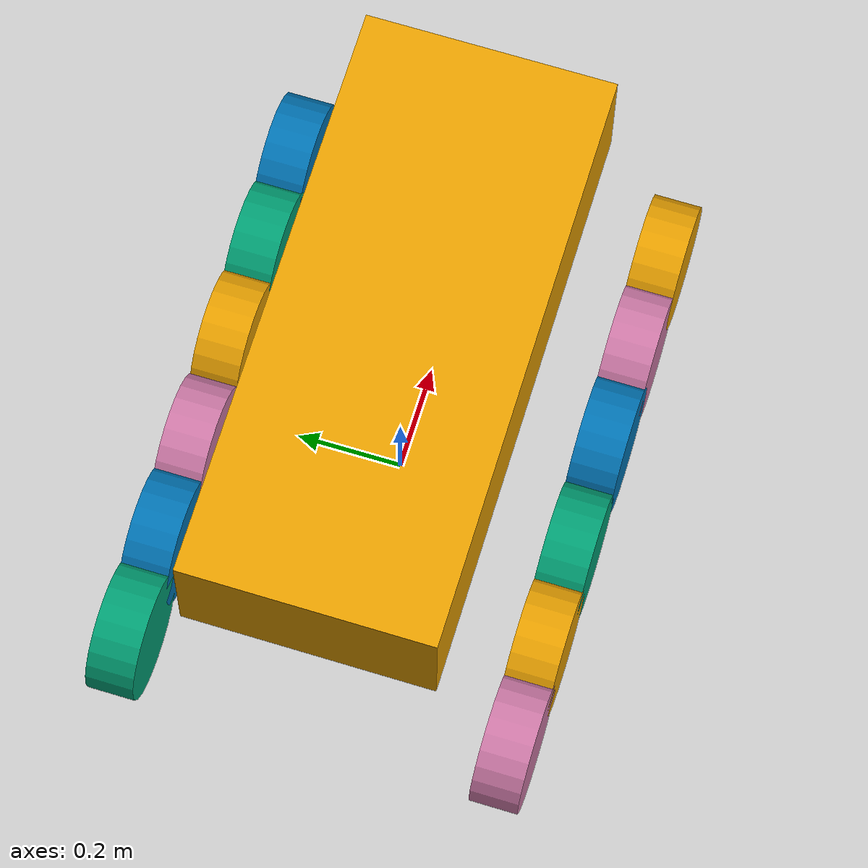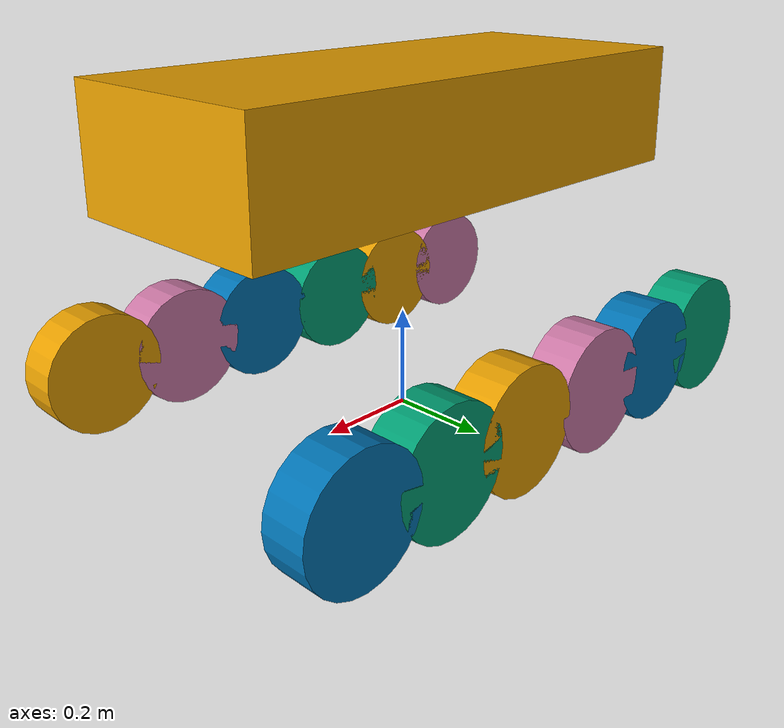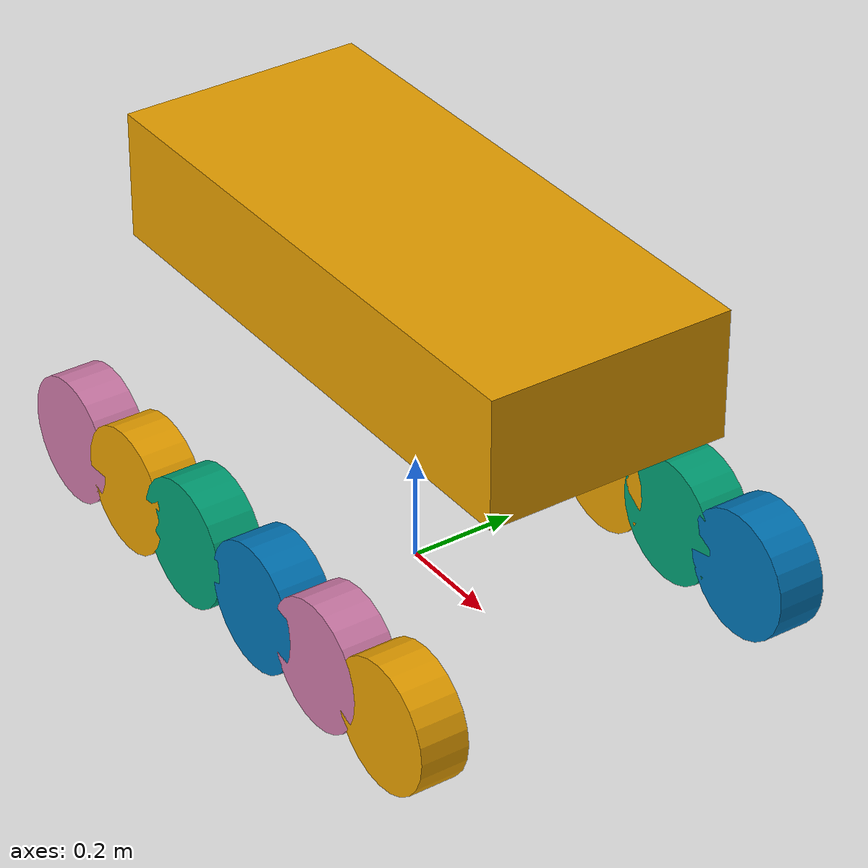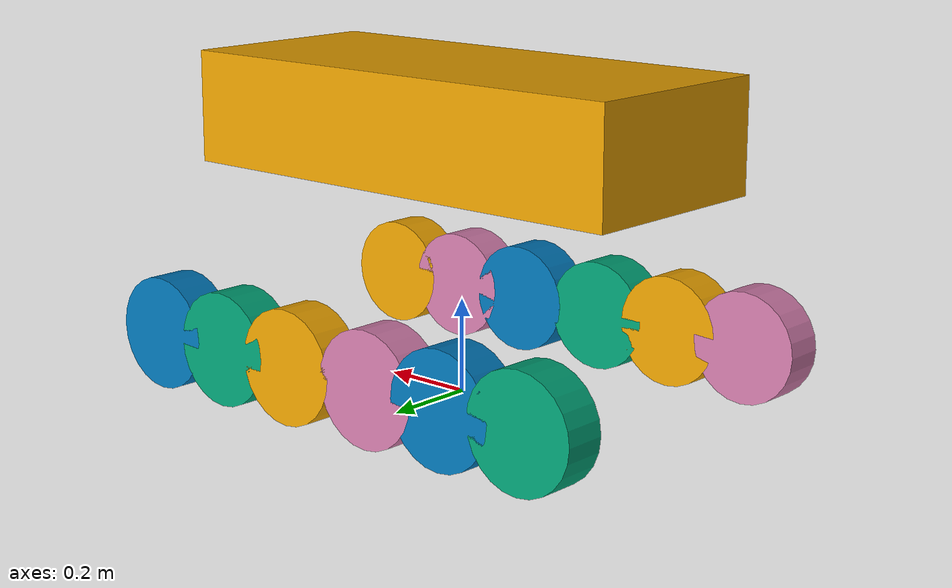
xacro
<?xml version='1.0'?>
<robot xmlns:xacro='http://www.ros.org/wiki/xacro' name='garden_tracked_overrow_high_clearance'>
  <xacro:property name='variant' value='tracked_overrow_high_clearance'/>
  <xacro:property name='mass_kg' value='70.0'/>
  <xacro:property name='track_gauge' value='0.72'/>
  <xacro:property name='wheel_radius' value='0.12'/>
  <xacro:property name='body_clearance' value='0.48'/>
  <link name='base_link'>
    <visual name='TRK5-BASE-001_visual'><origin xyz='0 0 0.58' rpy='0 0 0'/><geometry><box size='1.08 0.46 0.24'/></geometry></visual>
    <collision name='TRK5-BASE-001_collision'><origin xyz='0 0 0.57' rpy='0 0 0'/><geometry><box size='0.86 0.36 0.18'/></geometry></collision>
    <inertial><origin xyz='0 0 0.47' rpy='0 0 0'/><mass value='51.0'/><inertia ixx='1.1441000000000001' ixy='0' ixz='0' iyy='5.202000000000001' iyz='0' izz='5.8565000000000005'/></inertial>
  </link>
  <link name='left_carrier_0'/>
  <joint name='left_suspension_0' type='prismatic'><parent link='base_link'/><child link='left_carrier_0'/><origin xyz='-0.49 0.36 0.12' rpy='0 0 0'/><axis xyz='0 0 1'/><limit lower='-0.1' upper='0.1' effort='2500' velocity='1.5'/></joint>
  <link name='left_wheel'><visual name='TRK5-SPRUNG-GUIDE-ROLLER-001_visual_left_0'><geometry><cylinder radius='0.12' length='0.09'/></geometry></visual><collision name='TRK5-SPRUNG-GUIDE-ROLLER-001_collision_left_0'><geometry><cylinder radius='0.12' length='0.09'/></geometry></collision></link>
  <joint name='left_joint' type='continuous'><parent link='left_carrier_0'/><child link='left_wheel'/><origin xyz='0 0 0' rpy='1.57079632679 0 0'/><axis xyz='0 0 -1'/></joint>
  <link name='left_carrier_1'/>
  <joint name='left_suspension_1' type='prismatic'><parent link='base_link'/><child link='left_carrier_1'/><origin xyz='-0.3 0.36 0.12' rpy='0 0 0'/><axis xyz='0 0 1'/><limit lower='-0.1' upper='0.1' effort='2500' velocity='1.5'/></joint>
  <link name='left_wheel_1'><visual name='TRK5-SPRUNG-GUIDE-ROLLER-001_visual_left_1'><geometry><cylinder radius='0.12' length='0.09'/></geometry></visual><collision name='TRK5-SPRUNG-GUIDE-ROLLER-001_collision_left_1'><geometry><cylinder radius='0.12' length='0.09'/></geometry></collision></link>
  <joint name='left_joint_1' type='continuous'><parent link='left_carrier_1'/><child link='left_wheel_1'/><origin xyz='0 0 0' rpy='1.57079632679 0 0'/><axis xyz='0 0 -1'/></joint>
  <link name='left_carrier_2'/>
  <joint name='left_suspension_2' type='prismatic'><parent link='base_link'/><child link='left_carrier_2'/><origin xyz='-0.11 0.36 0.12' rpy='0 0 0'/><axis xyz='0 0 1'/><limit lower='-0.1' upper='0.1' effort='2500' velocity='1.5'/></joint>
  <link name='left_wheel_2'><visual name='TRK5-SPRUNG-GUIDE-ROLLER-001_visual_left_2'><geometry><cylinder radius='0.12' length='0.09'/></geometry></visual><collision name='TRK5-SPRUNG-GUIDE-ROLLER-001_collision_left_2'><geometry><cylinder radius='0.12' length='0.09'/></geometry></collision></link>
  <joint name='left_joint_2' type='continuous'><parent link='left_carrier_2'/><child link='left_wheel_2'/><origin xyz='0 0 0' rpy='1.57079632679 0 0'/><axis xyz='0 0 -1'/></joint>
  <link name='left_carrier_3'/>
  <joint name='left_suspension_3' type='prismatic'><parent link='base_link'/><child link='left_carrier_3'/><origin xyz='0.11 0.36 0.12' rpy='0 0 0'/><axis xyz='0 0 1'/><limit lower='-0.1' upper='0.1' effort='2500' velocity='1.5'/></joint>
  <link name='left_wheel_3'><visual name='TRK5-SPRUNG-GUIDE-ROLLER-001_visual_left_3'><geometry><cylinder radius='0.12' length='0.09'/></geometry></visual><collision name='TRK5-SPRUNG-GUIDE-ROLLER-001_collision_left_3'><geometry><cylinder radius='0.12' length='0.09'/></geometry></collision></link>
  <joint name='left_joint_3' type='continuous'><parent link='left_carrier_3'/><child link='left_wheel_3'/><origin xyz='0 0 0' rpy='1.57079632679 0 0'/><axis xyz='0 0 -1'/></joint>
  <link name='left_carrier_4'/>
  <joint name='left_suspension_4' type='prismatic'><parent link='base_link'/><child link='left_carrier_4'/><origin xyz='0.3 0.36 0.12' rpy='0 0 0'/><axis xyz='0 0 1'/><limit lower='-0.1' upper='0.1' effort='2500' velocity='1.5'/></joint>
  <link name='left_wheel_4'><visual name='TRK5-SPRUNG-GUIDE-ROLLER-001_visual_left_4'><geometry><cylinder radius='0.12' length='0.09'/></geometry></visual><collision name='TRK5-SPRUNG-GUIDE-ROLLER-001_collision_left_4'><geometry><cylinder radius='0.12' length='0.09'/></geometry></collision></link>
  <joint name='left_joint_4' type='continuous'><parent link='left_carrier_4'/><child link='left_wheel_4'/><origin xyz='0 0 0' rpy='1.57079632679 0 0'/><axis xyz='0 0 -1'/></joint>
  <link name='left_carrier_5'/>
  <joint name='left_suspension_5' type='prismatic'><parent link='base_link'/><child link='left_carrier_5'/><origin xyz='0.49 0.36 0.12' rpy='0 0 0'/><axis xyz='0 0 1'/><limit lower='-0.1' upper='0.1' effort='2500' velocity='1.5'/></joint>
  <link name='left_wheel_5'><visual name='TRK5-SPRUNG-GUIDE-ROLLER-001_visual_left_5'><geometry><cylinder radius='0.12' length='0.09'/></geometry></visual><collision name='TRK5-SPRUNG-GUIDE-ROLLER-001_collision_left_5'><geometry><cylinder radius='0.12' length='0.09'/></geometry></collision></link>
  <joint name='left_joint_5' type='continuous'><parent link='left_carrier_5'/><child link='left_wheel_5'/><origin xyz='0 0 0' rpy='1.57079632679 0 0'/><axis xyz='0 0 -1'/></joint>
  <link name='right_carrier_0'/>
  <joint name='right_suspension_0' type='prismatic'><parent link='base_link'/><child link='right_carrier_0'/><origin xyz='-0.49 -0.36 0.12' rpy='0 0 0'/><axis xyz='0 0 1'/><limit lower='-0.1' upper='0.1' effort='2500' velocity='1.5'/></joint>
  <link name='right_wheel'><visual name='TRK5-SPRUNG-GUIDE-ROLLER-001_visual_right_0'><geometry><cylinder radius='0.12' length='0.09'/></geometry></visual><collision name='TRK5-SPRUNG-GUIDE-ROLLER-001_collision_right_0'><geometry><cylinder radius='0.12' length='0.09'/></geometry></collision></link>
  <joint name='right_joint' type='continuous'><parent link='right_carrier_0'/><child link='right_wheel'/><origin xyz='0 0 0' rpy='1.57079632679 0 0'/><axis xyz='0 0 -1'/></joint>
  <link name='right_carrier_1'/>
  <joint name='right_suspension_1' type='prismatic'><parent link='base_link'/><child link='right_carrier_1'/><origin xyz='-0.3 -0.36 0.12' rpy='0 0 0'/><axis xyz='0 0 1'/><limit lower='-0.1' upper='0.1' effort='2500' velocity='1.5'/></joint>
  <link name='right_wheel_1'><visual name='TRK5-SPRUNG-GUIDE-ROLLER-001_visual_right_1'><geometry><cylinder radius='0.12' length='0.09'/></geometry></visual><collision name='TRK5-SPRUNG-GUIDE-ROLLER-001_collision_right_1'><geometry><cylinder radius='0.12' length='0.09'/></geometry></collision></link>
  <joint name='right_joint_1' type='continuous'><parent link='right_carrier_1'/><child link='right_wheel_1'/><origin xyz='0 0 0' rpy='1.57079632679 0 0'/><axis xyz='0 0 -1'/></joint>
  <link name='right_carrier_2'/>
  <joint name='right_suspension_2' type='prismatic'><parent link='base_link'/><child link='right_carrier_2'/><origin xyz='-0.11 -0.36 0.12' rpy='0 0 0'/><axis xyz='0 0 1'/><limit lower='-0.1' upper='0.1' effort='2500' velocity='1.5'/></joint>
  <link name='right_wheel_2'><visual name='TRK5-SPRUNG-GUIDE-ROLLER-001_visual_right_2'><geometry><cylinder radius='0.12' length='0.09'/></geometry></visual><collision name='TRK5-SPRUNG-GUIDE-ROLLER-001_collision_right_2'><geometry><cylinder radius='0.12' length='0.09'/></geometry></collision></link>
  <joint name='right_joint_2' type='continuous'><parent link='right_carrier_2'/><child link='right_wheel_2'/><origin xyz='0 0 0' rpy='1.57079632679 0 0'/><axis xyz='0 0 -1'/></joint>
  <link name='right_carrier_3'/>
  <joint name='right_suspension_3' type='prismatic'><parent link='base_link'/><child link='right_carrier_3'/><origin xyz='0.11 -0.36 0.12' rpy='0 0 0'/><axis xyz='0 0 1'/><limit lower='-0.1' upper='0.1' effort='2500' velocity='1.5'/></joint>
  <link name='right_wheel_3'><visual name='TRK5-SPRUNG-GUIDE-ROLLER-001_visual_right_3'><geometry><cylinder radius='0.12' length='0.09'/></geometry></visual><collision name='TRK5-SPRUNG-GUIDE-ROLLER-001_collision_right_3'><geometry><cylinder radius='0.12' length='0.09'/></geometry></collision></link>
  <joint name='right_joint_3' type='continuous'><parent link='right_carrier_3'/><child link='right_wheel_3'/><origin xyz='0 0 0' rpy='1.57079632679 0 0'/><axis xyz='0 0 -1'/></joint>
  <link name='right_carrier_4'/>
  <joint name='right_suspension_4' type='prismatic'><parent link='base_link'/><child link='right_carrier_4'/><origin xyz='0.3 -0.36 0.12' rpy='0 0 0'/><axis xyz='0 0 1'/><limit lower='-0.1' upper='0.1' effort='2500' velocity='1.5'/></joint>
  <link name='right_wheel_4'><visual name='TRK5-SPRUNG-GUIDE-ROLLER-001_visual_right_4'><geometry><cylinder radius='0.12' length='0.09'/></geometry></visual><collision name='TRK5-SPRUNG-GUIDE-ROLLER-001_collision_right_4'><geometry><cylinder radius='0.12' length='0.09'/></geometry></collision></link>
  <joint name='right_joint_4' type='continuous'><parent link='right_carrier_4'/><child link='right_wheel_4'/><origin xyz='0 0 0' rpy='1.57079632679 0 0'/><axis xyz='0 0 -1'/></joint>
  <link name='right_carrier_5'/>
  <joint name='right_suspension_5' type='prismatic'><parent link='base_link'/><child link='right_carrier_5'/><origin xyz='0.49 -0.36 0.12' rpy='0 0 0'/><axis xyz='0 0 1'/><limit lower='-0.1' upper='0.1' effort='2500' velocity='1.5'/></joint>
  <link name='right_wheel_5'><visual name='TRK5-SPRUNG-GUIDE-ROLLER-001_visual_right_5'><geometry><cylinder radius='0.12' length='0.09'/></geometry></visual><collision name='TRK5-SPRUNG-GUIDE-ROLLER-001_collision_right_5'><geometry><cylinder radius='0.12' length='0.09'/></geometry></collision></link>
  <joint name='right_joint_5' type='continuous'><parent link='right_carrier_5'/><child link='right_wheel_5'/><origin xyz='0 0 0' rpy='1.57079632679 0 0'/><axis xyz='0 0 -1'/></joint>
  <!-- Future CAD references: TRK5-BASE-001, TRK5-BELT-GUIDE-001, TRK5-SPRUNG-GUIDE-ROLLER-001. Visual and collision geometry remain separate. -->
</robot>
